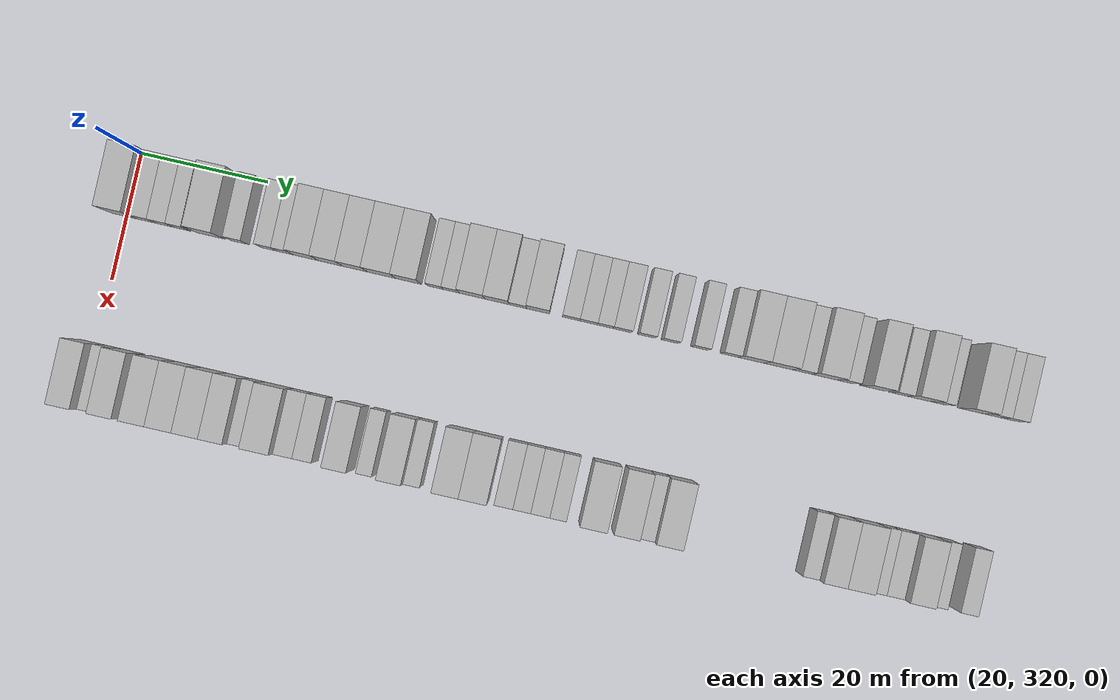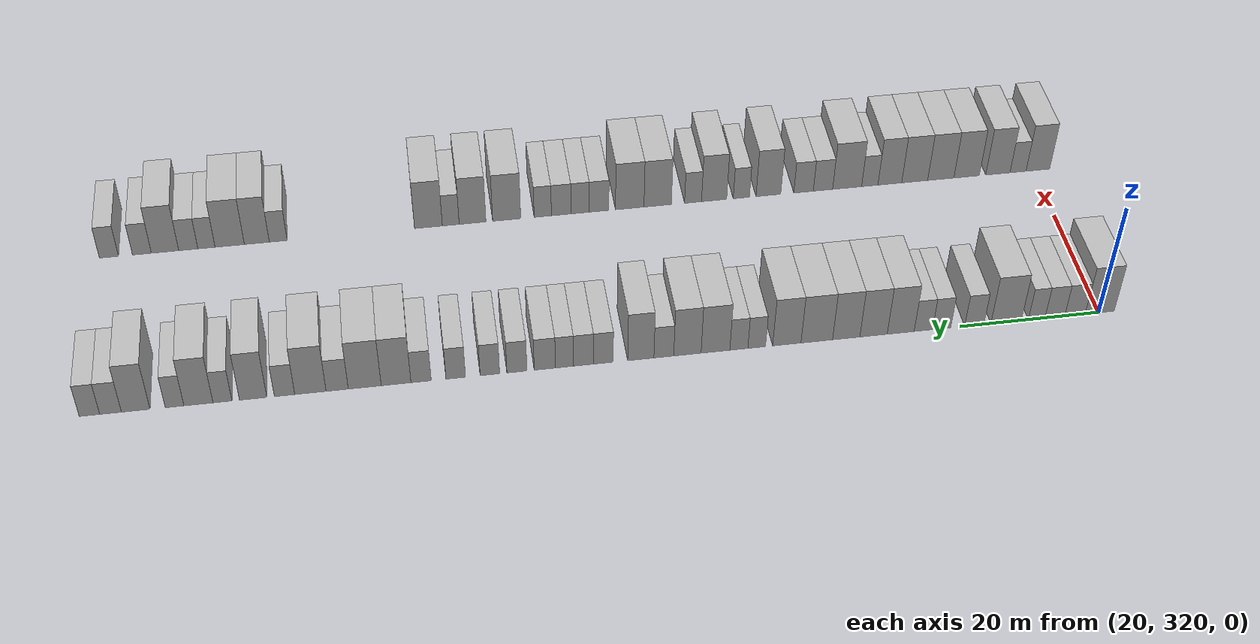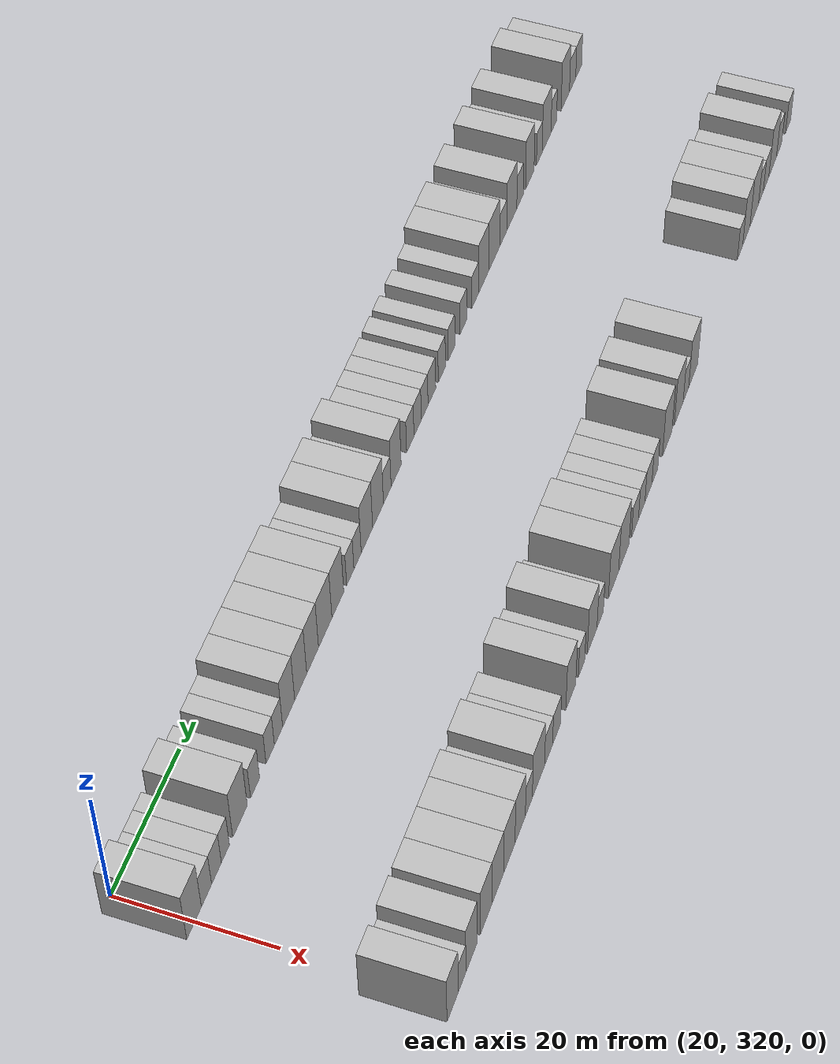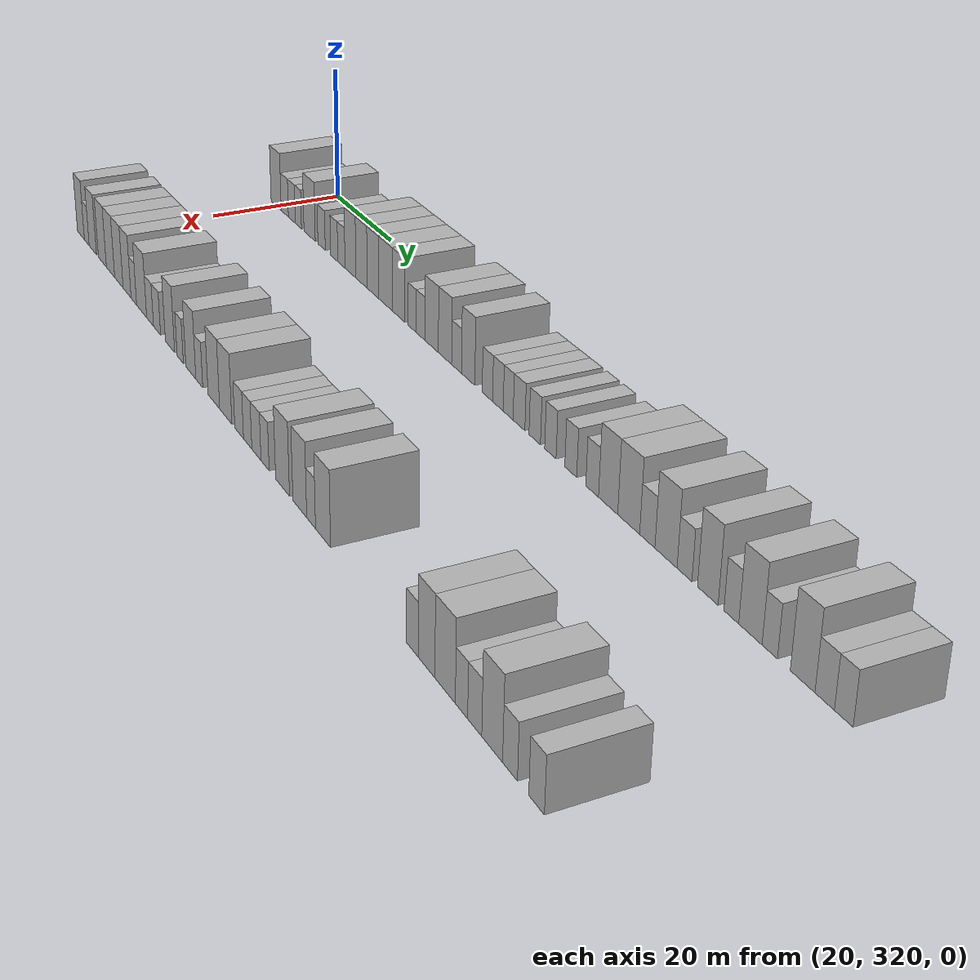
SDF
<sdf version="1.6">
 <world name="default">
  <model name="building_197">
   <static>1</static>
   <pose>25.0000 319.8557 0 0.000000 0.000000 0.000000</pose>
   <link name="link">
    <pose>0 0 4.50 0 0 0</pose>
    <collision name="collision"><geometry><box><size>10.0000 4.2234 9.0000</size></box></geometry></collision>
    <visual name="visual">
     <cast_shadows>0</cast_shadows>
     <geometry><box><size>10.0000 4.2234 9.0000</size></box></geometry>
     <material>
      <script>
       <uri>model://HANNAS_wall/materials/scripts</uri>
       <uri>model://HANNAS_wall/materials/textures</uri>
       <name>vrc/HANNAS_wall</name>
      </script>
     </material>
    </visual>
   </link>
  </model>
  <model name="building_198">
   <static>1</static>
   <pose>25.0000 323.4519 0 0.000000 0.000000 0.000000</pose>
   <link name="link">
    <pose>0 0 3.00 0 0 0</pose>
    <collision name="collision"><geometry><box><size>10.0000 2.9689 6.0000</size></box></geometry></collision>
    <visual name="visual">
     <cast_shadows>0</cast_shadows>
     <geometry><box><size>10.0000 2.9689 6.0000</size></box></geometry>
     <material>
      <script>
       <uri>model://HANNAS_wall/materials/scripts</uri>
       <uri>model://HANNAS_wall/materials/textures</uri>
       <name>vrc/HANNAS_wall</name>
      </script>
     </material>
    </visual>
   </link>
  </model>
  <model name="building_199">
   <static>1</static>
   <pose>25.0000 326.3634 0 0.000000 0.000000 0.000000</pose>
   <link name="link">
    <pose>0 0 3.00 0 0 0</pose>
    <collision name="collision"><geometry><box><size>10.0000 2.8542 6.0000</size></box></geometry></collision>
    <visual name="visual">
     <cast_shadows>0</cast_shadows>
     <geometry><box><size>10.0000 2.8542 6.0000</size></box></geometry>
     <material>
      <script>
       <uri>model://HANNAS_wall/materials/scripts</uri>
       <uri>model://HANNAS_wall/materials/textures</uri>
       <name>vrc/HANNAS_wall</name>
      </script>
     </material>
    </visual>
   </link>
  </model>
  <model name="building_200">
   <static>1</static>
   <pose>25.0000 328.9906 0 0.000000 0.000000 0.000000</pose>
   <link name="link">
    <pose>0 0 3.00 0 0 0</pose>
    <collision name="collision"><geometry><box><size>10.0000 2.4001 6.0000</size></box></geometry></collision>
    <visual name="visual">
     <cast_shadows>0</cast_shadows>
     <geometry><box><size>10.0000 2.4001 6.0000</size></box></geometry>
     <material>
      <script>
       <uri>model://HANNAS_wall/materials/scripts</uri>
       <uri>model://HANNAS_wall/materials/textures</uri>
       <name>vrc/HANNAS_wall</name>
      </script>
     </material>
    </visual>
   </link>
  </model>
  <model name="building_201">
   <static>1</static>
   <pose>25.0000 333.3855 0 0.000000 0.000000 0.000000</pose>
   <link name="link">
    <pose>0 0 4.50 0 0 0</pose>
    <collision name="collision"><geometry><box><size>10.0000 4.3897 9.0000</size></box></geometry></collision>
    <visual name="visual">
     <cast_shadows>0</cast_shadows>
     <geometry><box><size>10.0000 4.3897 9.0000</size></box></geometry>
     <material>
      <script>
       <uri>model://HANNAS_wall/materials/scripts</uri>
       <uri>model://HANNAS_wall/materials/textures</uri>
       <name>vrc/HANNAS_wall</name>
      </script>
     </material>
    </visual>
   </link>
  </model>
  <model name="building_202">
   <static>1</static>
   <pose>25.0000 337.9633 0 0.000000 0.000000 0.000000</pose>
   <link name="link">
    <pose>0 0 3.00 0 0 0</pose>
    <collision name="collision"><geometry><box><size>10.0000 2.7659 6.0000</size></box></geometry></collision>
    <visual name="visual">
     <cast_shadows>0</cast_shadows>
     <geometry><box><size>10.0000 2.7659 6.0000</size></box></geometry>
     <material>
      <script>
       <uri>model://HANNAS_wall/materials/scripts</uri>
       <uri>model://HANNAS_wall/materials/textures</uri>
       <name>vrc/HANNAS_wall</name>
      </script>
     </material>
    </visual>
   </link>
  </model>
  <model name="building_203">
   <static>1</static>
   <pose>25.0000 342.6513 0 0.000000 0.000000 0.000000</pose>
   <link name="link">
    <pose>0 0 3.00 0 0 0</pose>
    <collision name="collision"><geometry><box><size>10.0000 2.6101 6.0000</size></box></geometry></collision>
    <visual name="visual">
     <cast_shadows>0</cast_shadows>
     <geometry><box><size>10.0000 2.6101 6.0000</size></box></geometry>
     <material>
      <script>
       <uri>model://HANNAS_wall/materials/scripts</uri>
       <uri>model://HANNAS_wall/materials/textures</uri>
       <name>vrc/HANNAS_wall</name>
      </script>
     </material>
    </visual>
   </link>
  </model>
  <model name="building_204">
   <static>1</static>
   <pose>25.0000 345.2604 0 0.000000 0.000000 0.000000</pose>
   <link name="link">
    <pose>0 0 3.00 0 0 0</pose>
    <collision name="collision"><geometry><box><size>10.0000 2.6081 6.0000</size></box></geometry></collision>
    <visual name="visual">
     <cast_shadows>0</cast_shadows>
     <geometry><box><size>10.0000 2.6081 6.0000</size></box></geometry>
     <material>
      <script>
       <uri>model://HANNAS_wall/materials/scripts</uri>
       <uri>model://HANNAS_wall/materials/textures</uri>
       <name>vrc/HANNAS_wall</name>
      </script>
     </material>
    </visual>
   </link>
  </model>
  <model name="building_205">
   <static>1</static>
   <pose>25.0000 348.4833 0 0.000000 0.000000 0.000000</pose>
   <link name="link">
    <pose>0 0 4.50 0 0 0</pose>
    <collision name="collision"><geometry><box><size>10.0000 3.8378 9.0000</size></box></geometry></collision>
    <visual name="visual">
     <cast_shadows>0</cast_shadows>
     <geometry><box><size>10.0000 3.8378 9.0000</size></box></geometry>
     <material>
      <script>
       <uri>model://HANNAS_wall/materials/scripts</uri>
       <uri>model://HANNAS_wall/materials/textures</uri>
       <name>vrc/HANNAS_wall</name>
      </script>
     </material>
    </visual>
   </link>
  </model>
  <model name="building_206">
   <static>1</static>
   <pose>25.0000 352.3421 0 0.000000 0.000000 0.000000</pose>
   <link name="link">
    <pose>0 0 4.50 0 0 0</pose>
    <collision name="collision"><geometry><box><size>10.0000 3.8798 9.0000</size></box></geometry></collision>
    <visual name="visual">
     <cast_shadows>0</cast_shadows>
     <geometry><box><size>10.0000 3.8798 9.0000</size></box></geometry>
     <material>
      <script>
       <uri>model://HANNAS_wall/materials/scripts</uri>
       <uri>model://HANNAS_wall/materials/textures</uri>
       <name>vrc/HANNAS_wall</name>
      </script>
     </material>
    </visual>
   </link>
  </model>
  <model name="building_207">
   <static>1</static>
   <pose>25.0000 356.2117 0 0.000000 0.000000 0.000000</pose>
   <link name="link">
    <pose>0 0 4.50 0 0 0</pose>
    <collision name="collision"><geometry><box><size>10.0000 3.8594 9.0000</size></box></geometry></collision>
    <visual name="visual">
     <cast_shadows>0</cast_shadows>
     <geometry><box><size>10.0000 3.8594 9.0000</size></box></geometry>
     <material>
      <script>
       <uri>model://HANNAS_wall/materials/scripts</uri>
       <uri>model://HANNAS_wall/materials/textures</uri>
       <name>vrc/HANNAS_wall</name>
      </script>
     </material>
    </visual>
   </link>
  </model>
  <model name="building_208">
   <static>1</static>
   <pose>25.0000 360.3680 0 0.000000 0.000000 0.000000</pose>
   <link name="link">
    <pose>0 0 4.50 0 0 0</pose>
    <collision name="collision"><geometry><box><size>10.0000 4.4531 9.0000</size></box></geometry></collision>
    <visual name="visual">
     <cast_shadows>0</cast_shadows>
     <geometry><box><size>10.0000 4.4531 9.0000</size></box></geometry>
     <material>
      <script>
       <uri>model://HANNAS_wall/materials/scripts</uri>
       <uri>model://HANNAS_wall/materials/textures</uri>
       <name>vrc/HANNAS_wall</name>
      </script>
     </material>
    </visual>
   </link>
  </model>
  <model name="building_209">
   <static>1</static>
   <pose>25.0000 364.5858 0 0.000000 0.000000 0.000000</pose>
   <link name="link">
    <pose>0 0 4.50 0 0 0</pose>
    <collision name="collision"><geometry><box><size>10.0000 3.9825 9.0000</size></box></geometry></collision>
    <visual name="visual">
     <cast_shadows>0</cast_shadows>
     <geometry><box><size>10.0000 3.9825 9.0000</size></box></geometry>
     <material>
      <script>
       <uri>model://HANNAS_wall/materials/scripts</uri>
       <uri>model://HANNAS_wall/materials/textures</uri>
       <name>vrc/HANNAS_wall</name>
      </script>
     </material>
    </visual>
   </link>
  </model>
  <model name="building_210">
   <static>1</static>
   <pose>25.0000 368.8135 0 0.000000 0.000000 0.000000</pose>
   <link name="link">
    <pose>0 0 3.00 0 0 0</pose>
    <collision name="collision"><geometry><box><size>10.0000 2.4729 6.0000</size></box></geometry></collision>
    <visual name="visual">
     <cast_shadows>0</cast_shadows>
     <geometry><box><size>10.0000 2.4729 6.0000</size></box></geometry>
     <material>
      <script>
       <uri>model://HANNAS_wall/materials/scripts</uri>
       <uri>model://HANNAS_wall/materials/textures</uri>
       <name>vrc/HANNAS_wall</name>
      </script>
     </material>
    </visual>
   </link>
  </model>
  <model name="building_211">
   <static>1</static>
   <pose>25.0000 371.3110 0 0.000000 0.000000 0.000000</pose>
   <link name="link">
    <pose>0 0 3.00 0 0 0</pose>
    <collision name="collision"><geometry><box><size>10.0000 2.5222 6.0000</size></box></geometry></collision>
    <visual name="visual">
     <cast_shadows>0</cast_shadows>
     <geometry><box><size>10.0000 2.5222 6.0000</size></box></geometry>
     <material>
      <script>
       <uri>model://HANNAS_wall/materials/scripts</uri>
       <uri>model://HANNAS_wall/materials/textures</uri>
       <name>vrc/HANNAS_wall</name>
      </script>
     </material>
    </visual>
   </link>
  </model>
  <model name="building_212">
   <static>1</static>
   <pose>25.0000 374.5769 0 0.000000 0.000000 0.000000</pose>
   <link name="link">
    <pose>0 0 4.50 0 0 0</pose>
    <collision name="collision"><geometry><box><size>10.0000 4.0097 9.0000</size></box></geometry></collision>
    <visual name="visual">
     <cast_shadows>0</cast_shadows>
     <geometry><box><size>10.0000 4.0097 9.0000</size></box></geometry>
     <material>
      <script>
       <uri>model://HANNAS_wall/materials/scripts</uri>
       <uri>model://HANNAS_wall/materials/textures</uri>
       <name>vrc/HANNAS_wall</name>
      </script>
     </material>
    </visual>
   </link>
  </model>
  <model name="building_213">
   <static>1</static>
   <pose>25.0000 378.4858 0 0.000000 0.000000 0.000000</pose>
   <link name="link">
    <pose>0 0 4.50 0 0 0</pose>
    <collision name="collision"><geometry><box><size>10.0000 3.8081 9.0000</size></box></geometry></collision>
    <visual name="visual">
     <cast_shadows>0</cast_shadows>
     <geometry><box><size>10.0000 3.8081 9.0000</size></box></geometry>
     <material>
      <script>
       <uri>model://HANNAS_wall/materials/scripts</uri>
       <uri>model://HANNAS_wall/materials/textures</uri>
       <name>vrc/HANNAS_wall</name>
      </script>
     </material>
    </visual>
   </link>
  </model>
  <model name="building_214">
   <static>1</static>
   <pose>25.0000 381.7617 0 0.000000 0.000000 0.000000</pose>
   <link name="link">
    <pose>0 0 3.00 0 0 0</pose>
    <collision name="collision"><geometry><box><size>10.0000 2.7436 6.0000</size></box></geometry></collision>
    <visual name="visual">
     <cast_shadows>0</cast_shadows>
     <geometry><box><size>10.0000 2.7436 6.0000</size></box></geometry>
     <material>
      <script>
       <uri>model://HANNAS_wall/materials/scripts</uri>
       <uri>model://HANNAS_wall/materials/textures</uri>
       <name>vrc/HANNAS_wall</name>
      </script>
     </material>
    </visual>
   </link>
  </model>
  <model name="building_215">
   <static>1</static>
   <pose>25.0000 384.9480 0 0.000000 0.000000 0.000000</pose>
   <link name="link">
    <pose>0 0 4.50 0 0 0</pose>
    <collision name="collision"><geometry><box><size>10.0000 3.6289 9.0000</size></box></geometry></collision>
    <visual name="visual">
     <cast_shadows>0</cast_shadows>
     <geometry><box><size>10.0000 3.6289 9.0000</size></box></geometry>
     <material>
      <script>
       <uri>model://HANNAS_wall/materials/scripts</uri>
       <uri>model://HANNAS_wall/materials/textures</uri>
       <name>vrc/HANNAS_wall</name>
      </script>
     </material>
    </visual>
   </link>
  </model>
  <model name="building_216">
   <static>1</static>
   <pose>25.0000 390.1181 0 0.000000 0.000000 0.000000</pose>
   <link name="link">
    <pose>0 0 3.00 0 0 0</pose>
    <collision name="collision"><geometry><box><size>10.0000 2.7114 6.0000</size></box></geometry></collision>
    <visual name="visual">
     <cast_shadows>0</cast_shadows>
     <geometry><box><size>10.0000 2.7114 6.0000</size></box></geometry>
     <material>
      <script>
       <uri>model://HANNAS_wall/materials/scripts</uri>
       <uri>model://HANNAS_wall/materials/textures</uri>
       <name>vrc/HANNAS_wall</name>
      </script>
     </material>
    </visual>
   </link>
  </model>
  <model name="building_217">
   <static>1</static>
   <pose>25.0000 392.8410 0 0.000000 0.000000 0.000000</pose>
   <link name="link">
    <pose>0 0 3.00 0 0 0</pose>
    <collision name="collision"><geometry><box><size>10.0000 2.7344 6.0000</size></box></geometry></collision>
    <visual name="visual">
     <cast_shadows>0</cast_shadows>
     <geometry><box><size>10.0000 2.7344 6.0000</size></box></geometry>
     <material>
      <script>
       <uri>model://HANNAS_wall/materials/scripts</uri>
       <uri>model://HANNAS_wall/materials/textures</uri>
       <name>vrc/HANNAS_wall</name>
      </script>
     </material>
    </visual>
   </link>
  </model>
  <model name="building_218">
   <static>1</static>
   <pose>25.0000 395.4579 0 0.000000 0.000000 0.000000</pose>
   <link name="link">
    <pose>0 0 3.00 0 0 0</pose>
    <collision name="collision"><geometry><box><size>10.0000 2.4995 6.0000</size></box></geometry></collision>
    <visual name="visual">
     <cast_shadows>0</cast_shadows>
     <geometry><box><size>10.0000 2.4995 6.0000</size></box></geometry>
     <material>
      <script>
       <uri>model://HANNAS_wall/materials/scripts</uri>
       <uri>model://HANNAS_wall/materials/textures</uri>
       <name>vrc/HANNAS_wall</name>
      </script>
     </material>
    </visual>
   </link>
  </model>
  <model name="building_219">
   <static>1</static>
   <pose>25.0000 398.1596 0 0.000000 0.000000 0.000000</pose>
   <link name="link">
    <pose>0 0 3.00 0 0 0</pose>
    <collision name="collision"><geometry><box><size>10.0000 2.9039 6.0000</size></box></geometry></collision>
    <visual name="visual">
     <cast_shadows>0</cast_shadows>
     <geometry><box><size>10.0000 2.9039 6.0000</size></box></geometry>
     <material>
      <script>
       <uri>model://HANNAS_wall/materials/scripts</uri>
       <uri>model://HANNAS_wall/materials/textures</uri>
       <name>vrc/HANNAS_wall</name>
      </script>
     </material>
    </visual>
   </link>
  </model>
  <model name="building_220">
   <static>1</static>
   <pose>25.0000 401.9775 0 0.000000 0.000000 0.000000</pose>
   <link name="link">
    <pose>0 0 3.00 0 0 0</pose>
    <collision name="collision"><geometry><box><size>10.0000 2.7319 6.0000</size></box></geometry></collision>
    <visual name="visual">
     <cast_shadows>0</cast_shadows>
     <geometry><box><size>10.0000 2.7319 6.0000</size></box></geometry>
     <material>
      <script>
       <uri>model://HANNAS_wall/materials/scripts</uri>
       <uri>model://HANNAS_wall/materials/textures</uri>
       <name>vrc/HANNAS_wall</name>
      </script>
     </material>
    </visual>
   </link>
  </model>
  <model name="building_221">
   <static>1</static>
   <pose>25.0000 405.6670 0 0.000000 0.000000 0.000000</pose>
   <link name="link">
    <pose>0 0 3.00 0 0 0</pose>
    <collision name="collision"><geometry><box><size>10.0000 2.6470 6.0000</size></box></geometry></collision>
    <visual name="visual">
     <cast_shadows>0</cast_shadows>
     <geometry><box><size>10.0000 2.6470 6.0000</size></box></geometry>
     <material>
      <script>
       <uri>model://HANNAS_wall/materials/scripts</uri>
       <uri>model://HANNAS_wall/materials/textures</uri>
       <name>vrc/HANNAS_wall</name>
      </script>
     </material>
    </visual>
   </link>
  </model>
  <model name="building_222">
   <static>1</static>
   <pose>25.0000 410.3120 0 0.000000 0.000000 0.000000</pose>
   <link name="link">
    <pose>0 0 3.00 0 0 0</pose>
    <collision name="collision"><geometry><box><size>10.0000 2.6430 6.0000</size></box></geometry></collision>
    <visual name="visual">
     <cast_shadows>0</cast_shadows>
     <geometry><box><size>10.0000 2.6430 6.0000</size></box></geometry>
     <material>
      <script>
       <uri>model://HANNAS_wall/materials/scripts</uri>
       <uri>model://HANNAS_wall/materials/textures</uri>
       <name>vrc/HANNAS_wall</name>
      </script>
     </material>
    </visual>
   </link>
  </model>
  <model name="building_223">
   <static>1</static>
   <pose>25.0000 415.0012 0 0.000000 0.000000 0.000000</pose>
   <link name="link">
    <pose>0 0 3.00 0 0 0</pose>
    <collision name="collision"><geometry><box><size>10.0000 2.7354 6.0000</size></box></geometry></collision>
    <visual name="visual">
     <cast_shadows>0</cast_shadows>
     <geometry><box><size>10.0000 2.7354 6.0000</size></box></geometry>
     <material>
      <script>
       <uri>model://HANNAS_wall/materials/scripts</uri>
       <uri>model://HANNAS_wall/materials/textures</uri>
       <name>vrc/HANNAS_wall</name>
      </script>
     </material>
    </visual>
   </link>
  </model>
  <model name="building_224">
   <static>1</static>
   <pose>25.0000 418.3740 0 0.000000 0.000000 0.000000</pose>
   <link name="link">
    <pose>0 0 4.50 0 0 0</pose>
    <collision name="collision"><geometry><box><size>10.0000 4.0102 9.0000</size></box></geometry></collision>
    <visual name="visual">
     <cast_shadows>0</cast_shadows>
     <geometry><box><size>10.0000 4.0102 9.0000</size></box></geometry>
     <material>
      <script>
       <uri>model://HANNAS_wall/materials/scripts</uri>
       <uri>model://HANNAS_wall/materials/textures</uri>
       <name>vrc/HANNAS_wall</name>
      </script>
     </material>
    </visual>
   </link>
  </model>
  <model name="building_225">
   <static>1</static>
   <pose>25.0000 422.5946 0 0.000000 0.000000 0.000000</pose>
   <link name="link">
    <pose>0 0 4.50 0 0 0</pose>
    <collision name="collision"><geometry><box><size>10.0000 4.4310 9.0000</size></box></geometry></collision>
    <visual name="visual">
     <cast_shadows>0</cast_shadows>
     <geometry><box><size>10.0000 4.4310 9.0000</size></box></geometry>
     <material>
      <script>
       <uri>model://HANNAS_wall/materials/scripts</uri>
       <uri>model://HANNAS_wall/materials/textures</uri>
       <name>vrc/HANNAS_wall</name>
      </script>
     </material>
    </visual>
   </link>
  </model>
  <model name="building_226">
   <static>1</static>
   <pose>25.0000 426.2980 0 0.000000 0.000000 0.000000</pose>
   <link name="link">
    <pose>0 0 3.00 0 0 0</pose>
    <collision name="collision"><geometry><box><size>10.0000 2.9757 6.0000</size></box></geometry></collision>
    <visual name="visual">
     <cast_shadows>0</cast_shadows>
     <geometry><box><size>10.0000 2.9757 6.0000</size></box></geometry>
     <material>
      <script>
       <uri>model://HANNAS_wall/materials/scripts</uri>
       <uri>model://HANNAS_wall/materials/textures</uri>
       <name>vrc/HANNAS_wall</name>
      </script>
     </material>
    </visual>
   </link>
  </model>
  <model name="building_227">
   <static>1</static>
   <pose>25.0000 429.8793 0 0.000000 0.000000 0.000000</pose>
   <link name="link">
    <pose>0 0 4.50 0 0 0</pose>
    <collision name="collision"><geometry><box><size>10.0000 4.1868 9.0000</size></box></geometry></collision>
    <visual name="visual">
     <cast_shadows>0</cast_shadows>
     <geometry><box><size>10.0000 4.1868 9.0000</size></box></geometry>
     <material>
      <script>
       <uri>model://HANNAS_wall/materials/scripts</uri>
       <uri>model://HANNAS_wall/materials/textures</uri>
       <name>vrc/HANNAS_wall</name>
      </script>
     </material>
    </visual>
   </link>
  </model>
  <model name="building_228">
   <static>1</static>
   <pose>25.0000 433.3317 0 0.000000 0.000000 0.000000</pose>
   <link name="link">
    <pose>0 0 3.00 0 0 0</pose>
    <collision name="collision"><geometry><box><size>10.0000 2.7180 6.0000</size></box></geometry></collision>
    <visual name="visual">
     <cast_shadows>0</cast_shadows>
     <geometry><box><size>10.0000 2.7180 6.0000</size></box></geometry>
     <material>
      <script>
       <uri>model://HANNAS_wall/materials/scripts</uri>
       <uri>model://HANNAS_wall/materials/textures</uri>
       <name>vrc/HANNAS_wall</name>
      </script>
     </material>
    </visual>
   </link>
  </model>
  <model name="building_229">
   <static>1</static>
   <pose>25.0000 437.5101 0 0.000000 0.000000 0.000000</pose>
   <link name="link">
    <pose>0 0 4.50 0 0 0</pose>
    <collision name="collision"><geometry><box><size>10.0000 3.6388 9.0000</size></box></geometry></collision>
    <visual name="visual">
     <cast_shadows>0</cast_shadows>
     <geometry><box><size>10.0000 3.6388 9.0000</size></box></geometry>
     <material>
      <script>
       <uri>model://HANNAS_wall/materials/scripts</uri>
       <uri>model://HANNAS_wall/materials/textures</uri>
       <name>vrc/HANNAS_wall</name>
      </script>
     </material>
    </visual>
   </link>
  </model>
  <model name="building_230">
   <static>1</static>
   <pose>25.0000 441.5833 0 0.000000 0.000000 0.000000</pose>
   <link name="link">
    <pose>0 0 3.00 0 0 0</pose>
    <collision name="collision"><geometry><box><size>10.0000 2.5076 6.0000</size></box></geometry></collision>
    <visual name="visual">
     <cast_shadows>0</cast_shadows>
     <geometry><box><size>10.0000 2.5076 6.0000</size></box></geometry>
     <material>
      <script>
       <uri>model://HANNAS_wall/materials/scripts</uri>
       <uri>model://HANNAS_wall/materials/textures</uri>
       <name>vrc/HANNAS_wall</name>
      </script>
     </material>
    </visual>
   </link>
  </model>
  <model name="building_231">
   <static>1</static>
   <pose>25.0000 444.7600 0 0.000000 0.000000 0.000000</pose>
   <link name="link">
    <pose>0 0 4.50 0 0 0</pose>
    <collision name="collision"><geometry><box><size>10.0000 3.8456 9.0000</size></box></geometry></collision>
    <visual name="visual">
     <cast_shadows>0</cast_shadows>
     <geometry><box><size>10.0000 3.8456 9.0000</size></box></geometry>
     <material>
      <script>
       <uri>model://HANNAS_wall/materials/scripts</uri>
       <uri>model://HANNAS_wall/materials/textures</uri>
       <name>vrc/HANNAS_wall</name>
      </script>
     </material>
    </visual>
   </link>
  </model>
  <model name="building_232">
   <static>1</static>
   <pose>25.0000 447.9130 0 0.000000 0.000000 0.000000</pose>
   <link name="link">
    <pose>0 0 3.00 0 0 0</pose>
    <collision name="collision"><geometry><box><size>10.0000 2.4603 6.0000</size></box></geometry></collision>
    <visual name="visual">
     <cast_shadows>0</cast_shadows>
     <geometry><box><size>10.0000 2.4603 6.0000</size></box></geometry>
     <material>
      <script>
       <uri>model://HANNAS_wall/materials/scripts</uri>
       <uri>model://HANNAS_wall/materials/textures</uri>
       <name>vrc/HANNAS_wall</name>
      </script>
     </material>
    </visual>
   </link>
  </model>
  <model name="building_233">
   <static>1</static>
   <pose>25.0000 453.0198 0 0.000000 0.000000 0.000000</pose>
   <link name="link">
    <pose>0 0 4.50 0 0 0</pose>
    <collision name="collision"><geometry><box><size>10.0000 3.7533 9.0000</size></box></geometry></collision>
    <visual name="visual">
     <cast_shadows>0</cast_shadows>
     <geometry><box><size>10.0000 3.7533 9.0000</size></box></geometry>
     <material>
      <script>
       <uri>model://HANNAS_wall/materials/scripts</uri>
       <uri>model://HANNAS_wall/materials/textures</uri>
       <name>vrc/HANNAS_wall</name>
      </script>
     </material>
    </visual>
   </link>
  </model>
  <model name="building_234">
   <static>1</static>
   <pose>25.0000 456.3188 0 0.000000 0.000000 0.000000</pose>
   <link name="link">
    <pose>0 0 3.00 0 0 0</pose>
    <collision name="collision"><geometry><box><size>10.0000 2.8449 6.0000</size></box></geometry></collision>
    <visual name="visual">
     <cast_shadows>0</cast_shadows>
     <geometry><box><size>10.0000 2.8449 6.0000</size></box></geometry>
     <material>
      <script>
       <uri>model://HANNAS_wall/materials/scripts</uri>
       <uri>model://HANNAS_wall/materials/textures</uri>
       <name>vrc/HANNAS_wall</name>
      </script>
     </material>
    </visual>
   </link>
  </model>
  <model name="building_235">
   <static>1</static>
   <pose>25.0000 459.0785 0 0.000000 0.000000 0.000000</pose>
   <link name="link">
    <pose>0 0 3.00 0 0 0</pose>
    <collision name="collision"><geometry><box><size>10.0000 2.6744 6.0000</size></box></geometry></collision>
    <visual name="visual">
     <cast_shadows>0</cast_shadows>
     <geometry><box><size>10.0000 2.6744 6.0000</size></box></geometry>
     <material>
      <script>
       <uri>model://HANNAS_wall/materials/scripts</uri>
       <uri>model://HANNAS_wall/materials/textures</uri>
       <name>vrc/HANNAS_wall</name>
      </script>
     </material>
    </visual>
   </link>
  </model>
  <model name="building_429">
   <static>1</static>
   <pose>55.0000 319.3442 0 0.000000 0.000000 0.000000</pose>
   <link name="link">
    <pose>0 0 4.50 0 0 0</pose>
    <collision name="collision"><geometry><box><size>10.0000 3.6996 9.0000</size></box></geometry></collision>
    <visual name="visual">
     <cast_shadows>0</cast_shadows>
     <geometry><box><size>10.0000 3.6996 9.0000</size></box></geometry>
     <material>
      <script>
       <uri>model://HANNAS_wall/materials/scripts</uri>
       <uri>model://HANNAS_wall/materials/textures</uri>
       <name>vrc/HANNAS_wall</name>
      </script>
     </material>
    </visual>
   </link>
  </model>
  <model name="building_430">
   <static>1</static>
   <pose>55.0000 322.4497 0 0.000000 0.000000 0.000000</pose>
   <link name="link">
    <pose>0 0 3.00 0 0 0</pose>
    <collision name="collision"><geometry><box><size>10.0000 2.5115 6.0000</size></box></geometry></collision>
    <visual name="visual">
     <cast_shadows>0</cast_shadows>
     <geometry><box><size>10.0000 2.5115 6.0000</size></box></geometry>
     <material>
      <script>
       <uri>model://HANNAS_wall/materials/scripts</uri>
       <uri>model://HANNAS_wall/materials/textures</uri>
       <name>vrc/HANNAS_wall</name>
      </script>
     </material>
    </visual>
   </link>
  </model>
  <model name="building_431">
   <static>1</static>
   <pose>55.0000 325.5957 0 0.000000 0.000000 0.000000</pose>
   <link name="link">
    <pose>0 0 4.50 0 0 0</pose>
    <collision name="collision"><geometry><box><size>10.0000 3.7805 9.0000</size></box></geometry></collision>
    <visual name="visual">
     <cast_shadows>0</cast_shadows>
     <geometry><box><size>10.0000 3.7805 9.0000</size></box></geometry>
     <material>
      <script>
       <uri>model://HANNAS_wall/materials/scripts</uri>
       <uri>model://HANNAS_wall/materials/textures</uri>
       <name>vrc/HANNAS_wall</name>
      </script>
     </material>
    </visual>
   </link>
  </model>
  <model name="building_432">
   <static>1</static>
   <pose>55.0000 330.4699 0 0.000000 0.000000 0.000000</pose>
   <link name="link">
    <pose>0 0 4.50 0 0 0</pose>
    <collision name="collision"><geometry><box><size>10.0000 3.9678 9.0000</size></box></geometry></collision>
    <visual name="visual">
     <cast_shadows>0</cast_shadows>
     <geometry><box><size>10.0000 3.9678 9.0000</size></box></geometry>
     <material>
      <script>
       <uri>model://HANNAS_wall/materials/scripts</uri>
       <uri>model://HANNAS_wall/materials/textures</uri>
       <name>vrc/HANNAS_wall</name>
      </script>
     </material>
    </visual>
   </link>
  </model>
  <model name="building_433">
   <static>1</static>
   <pose>55.0000 334.4883 0 0.000000 0.000000 0.000000</pose>
   <link name="link">
    <pose>0 0 4.50 0 0 0</pose>
    <collision name="collision"><geometry><box><size>10.0000 4.0689 9.0000</size></box></geometry></collision>
    <visual name="visual">
     <cast_shadows>0</cast_shadows>
     <geometry><box><size>10.0000 4.0689 9.0000</size></box></geometry>
     <material>
      <script>
       <uri>model://HANNAS_wall/materials/scripts</uri>
       <uri>model://HANNAS_wall/materials/textures</uri>
       <name>vrc/HANNAS_wall</name>
      </script>
     </material>
    </visual>
   </link>
  </model>
  <model name="building_434">
   <static>1</static>
   <pose>55.0000 338.5330 0 0.000000 0.000000 0.000000</pose>
   <link name="link">
    <pose>0 0 4.50 0 0 0</pose>
    <collision name="collision"><geometry><box><size>10.0000 4.0204 9.0000</size></box></geometry></collision>
    <visual name="visual">
     <cast_shadows>0</cast_shadows>
     <geometry><box><size>10.0000 4.0204 9.0000</size></box></geometry>
     <material>
      <script>
       <uri>model://HANNAS_wall/materials/scripts</uri>
       <uri>model://HANNAS_wall/materials/textures</uri>
       <name>vrc/HANNAS_wall</name>
      </script>
     </material>
    </visual>
   </link>
  </model>
  <model name="building_435">
   <static>1</static>
   <pose>55.0000 342.3764 0 0.000000 0.000000 0.000000</pose>
   <link name="link">
    <pose>0 0 4.50 0 0 0</pose>
    <collision name="collision"><geometry><box><size>10.0000 3.6665 9.0000</size></box></geometry></collision>
    <visual name="visual">
     <cast_shadows>0</cast_shadows>
     <geometry><box><size>10.0000 3.6665 9.0000</size></box></geometry>
     <material>
      <script>
       <uri>model://HANNAS_wall/materials/scripts</uri>
       <uri>model://HANNAS_wall/materials/textures</uri>
       <name>vrc/HANNAS_wall</name>
      </script>
     </material>
    </visual>
   </link>
  </model>
  <model name="building_436">
   <static>1</static>
   <pose>55.0000 345.4681 0 0.000000 0.000000 0.000000</pose>
   <link name="link">
    <pose>0 0 3.00 0 0 0</pose>
    <collision name="collision"><geometry><box><size>10.0000 2.5168 6.0000</size></box></geometry></collision>
    <visual name="visual">
     <cast_shadows>0</cast_shadows>
     <geometry><box><size>10.0000 2.5168 6.0000</size></box></geometry>
     <material>
      <script>
       <uri>model://HANNAS_wall/materials/scripts</uri>
       <uri>model://HANNAS_wall/materials/textures</uri>
       <name>vrc/HANNAS_wall</name>
      </script>
     </material>
    </visual>
   </link>
  </model>
  <model name="building_437">
   <static>1</static>
   <pose>55.0000 348.9542 0 0.000000 0.000000 0.000000</pose>
   <link name="link">
    <pose>0 0 4.50 0 0 0</pose>
    <collision name="collision"><geometry><box><size>10.0000 4.4554 9.0000</size></box></geometry></collision>
    <visual name="visual">
     <cast_shadows>0</cast_shadows>
     <geometry><box><size>10.0000 4.4554 9.0000</size></box></geometry>
     <material>
      <script>
       <uri>model://HANNAS_wall/materials/scripts</uri>
       <uri>model://HANNAS_wall/materials/textures</uri>
       <name>vrc/HANNAS_wall</name>
      </script>
     </material>
    </visual>
   </link>
  </model>
  <model name="building_438">
   <static>1</static>
   <pose>55.0000 352.6617 0 0.000000 0.000000 0.000000</pose>
   <link name="link">
    <pose>0 0 3.00 0 0 0</pose>
    <collision name="collision"><geometry><box><size>10.0000 2.9597 6.0000</size></box></geometry></collision>
    <visual name="visual">
     <cast_shadows>0</cast_shadows>
     <geometry><box><size>10.0000 2.9597 6.0000</size></box></geometry>
     <material>
      <script>
       <uri>model://HANNAS_wall/materials/scripts</uri>
       <uri>model://HANNAS_wall/materials/textures</uri>
       <name>vrc/HANNAS_wall</name>
      </script>
     </material>
    </visual>
   </link>
  </model>
  <model name="building_439">
   <static>1</static>
   <pose>55.0000 355.6307 0 0.000000 0.000000 0.000000</pose>
   <link name="link">
    <pose>0 0 3.00 0 0 0</pose>
    <collision name="collision"><geometry><box><size>10.0000 2.9783 6.0000</size></box></geometry></collision>
    <visual name="visual">
     <cast_shadows>0</cast_shadows>
     <geometry><box><size>10.0000 2.9783 6.0000</size></box></geometry>
     <material>
      <script>
       <uri>model://HANNAS_wall/materials/scripts</uri>
       <uri>model://HANNAS_wall/materials/textures</uri>
       <name>vrc/HANNAS_wall</name>
      </script>
     </material>
    </visual>
   </link>
  </model>
  <model name="building_440">
   <static>1</static>
   <pose>55.0000 361.0035 0 0.000000 0.000000 0.000000</pose>
   <link name="link">
    <pose>0 0 4.50 0 0 0</pose>
    <collision name="collision"><geometry><box><size>10.0000 3.7672 9.0000</size></box></geometry></collision>
    <visual name="visual">
     <cast_shadows>0</cast_shadows>
     <geometry><box><size>10.0000 3.7672 9.0000</size></box></geometry>
     <material>
      <script>
       <uri>model://HANNAS_wall/materials/scripts</uri>
       <uri>model://HANNAS_wall/materials/textures</uri>
       <name>vrc/HANNAS_wall</name>
      </script>
     </material>
    </visual>
   </link>
  </model>
  <model name="building_441">
   <static>1</static>
   <pose>55.0000 365.1164 0 0.000000 0.000000 0.000000</pose>
   <link name="link">
    <pose>0 0 3.00 0 0 0</pose>
    <collision name="collision"><geometry><box><size>10.0000 2.4588 6.0000</size></box></geometry></collision>
    <visual name="visual">
     <cast_shadows>0</cast_shadows>
     <geometry><box><size>10.0000 2.4588 6.0000</size></box></geometry>
     <material>
      <script>
       <uri>model://HANNAS_wall/materials/scripts</uri>
       <uri>model://HANNAS_wall/materials/textures</uri>
       <name>vrc/HANNAS_wall</name>
      </script>
     </material>
    </visual>
   </link>
  </model>
  <model name="building_442">
   <static>1</static>
   <pose>55.0000 369.2490 0 0.000000 0.000000 0.000000</pose>
   <link name="link">
    <pose>0 0 4.50 0 0 0</pose>
    <collision name="collision"><geometry><box><size>10.0000 3.8063 9.0000</size></box></geometry></collision>
    <visual name="visual">
     <cast_shadows>0</cast_shadows>
     <geometry><box><size>10.0000 3.8063 9.0000</size></box></geometry>
     <material>
      <script>
       <uri>model://HANNAS_wall/materials/scripts</uri>
       <uri>model://HANNAS_wall/materials/textures</uri>
       <name>vrc/HANNAS_wall</name>
      </script>
     </material>
    </visual>
   </link>
  </model>
  <model name="building_443">
   <static>1</static>
   <pose>55.0000 372.4330 0 0.000000 0.000000 0.000000</pose>
   <link name="link">
    <pose>0 0 3.00 0 0 0</pose>
    <collision name="collision"><geometry><box><size>10.0000 2.5617 6.0000</size></box></geometry></collision>
    <visual name="visual">
     <cast_shadows>0</cast_shadows>
     <geometry><box><size>10.0000 2.5617 6.0000</size></box></geometry>
     <material>
      <script>
       <uri>model://HANNAS_wall/materials/scripts</uri>
       <uri>model://HANNAS_wall/materials/textures</uri>
       <name>vrc/HANNAS_wall</name>
      </script>
     </material>
    </visual>
   </link>
  </model>
  <model name="building_444">
   <static>1</static>
   <pose>55.0000 377.7734 0 0.000000 0.000000 0.000000</pose>
   <link name="link">
    <pose>0 0 4.50 0 0 0</pose>
    <collision name="collision"><geometry><box><size>10.0000 4.1191 9.0000</size></box></geometry></collision>
    <visual name="visual">
     <cast_shadows>0</cast_shadows>
     <geometry><box><size>10.0000 4.1191 9.0000</size></box></geometry>
     <material>
      <script>
       <uri>model://HANNAS_wall/materials/scripts</uri>
       <uri>model://HANNAS_wall/materials/textures</uri>
       <name>vrc/HANNAS_wall</name>
      </script>
     </material>
    </visual>
   </link>
  </model>
  <model name="building_445">
   <static>1</static>
   <pose>55.0000 381.9698 0 0.000000 0.000000 0.000000</pose>
   <link name="link">
    <pose>0 0 4.50 0 0 0</pose>
    <collision name="collision"><geometry><box><size>10.0000 4.2736 9.0000</size></box></geometry></collision>
    <visual name="visual">
     <cast_shadows>0</cast_shadows>
     <geometry><box><size>10.0000 4.2736 9.0000</size></box></geometry>
     <material>
      <script>
       <uri>model://HANNAS_wall/materials/scripts</uri>
       <uri>model://HANNAS_wall/materials/textures</uri>
       <name>vrc/HANNAS_wall</name>
      </script>
     </material>
    </visual>
   </link>
  </model>
  <model name="building_446">
   <static>1</static>
   <pose>55.0000 386.5613 0 0.000000 0.000000 0.000000</pose>
   <link name="link">
    <pose>0 0 3.00 0 0 0</pose>
    <collision name="collision"><geometry><box><size>10.0000 2.9094 6.0000</size></box></geometry></collision>
    <visual name="visual">
     <cast_shadows>0</cast_shadows>
     <geometry><box><size>10.0000 2.9094 6.0000</size></box></geometry>
     <material>
      <script>
       <uri>model://HANNAS_wall/materials/scripts</uri>
       <uri>model://HANNAS_wall/materials/textures</uri>
       <name>vrc/HANNAS_wall</name>
      </script>
     </material>
    </visual>
   </link>
  </model>
  <model name="building_447">
   <static>1</static>
   <pose>55.0000 389.3828 0 0.000000 0.000000 0.000000</pose>
   <link name="link">
    <pose>0 0 3.00 0 0 0</pose>
    <collision name="collision"><geometry><box><size>10.0000 2.7337 6.0000</size></box></geometry></collision>
    <visual name="visual">
     <cast_shadows>0</cast_shadows>
     <geometry><box><size>10.0000 2.7337 6.0000</size></box></geometry>
     <material>
      <script>
       <uri>model://HANNAS_wall/materials/scripts</uri>
       <uri>model://HANNAS_wall/materials/textures</uri>
       <name>vrc/HANNAS_wall</name>
      </script>
     </material>
    </visual>
   </link>
  </model>
  <model name="building_448">
   <static>1</static>
   <pose>55.0000 392.2156 0 0.000000 0.000000 0.000000</pose>
   <link name="link">
    <pose>0 0 3.00 0 0 0</pose>
    <collision name="collision"><geometry><box><size>10.0000 2.9319 6.0000</size></box></geometry></collision>
    <visual name="visual">
     <cast_shadows>0</cast_shadows>
     <geometry><box><size>10.0000 2.9319 6.0000</size></box></geometry>
     <material>
      <script>
       <uri>model://HANNAS_wall/materials/scripts</uri>
       <uri>model://HANNAS_wall/materials/textures</uri>
       <name>vrc/HANNAS_wall</name>
      </script>
     </material>
    </visual>
   </link>
  </model>
  <model name="building_449">
   <static>1</static>
   <pose>55.0000 394.9618 0 0.000000 0.000000 0.000000</pose>
   <link name="link">
    <pose>0 0 3.00 0 0 0</pose>
    <collision name="collision"><geometry><box><size>10.0000 2.5603 6.0000</size></box></geometry></collision>
    <visual name="visual">
     <cast_shadows>0</cast_shadows>
     <geometry><box><size>10.0000 2.5603 6.0000</size></box></geometry>
     <material>
      <script>
       <uri>model://HANNAS_wall/materials/scripts</uri>
       <uri>model://HANNAS_wall/materials/textures</uri>
       <name>vrc/HANNAS_wall</name>
      </script>
     </material>
    </visual>
   </link>
  </model>
  <model name="building_450">
   <static>1</static>
   <pose>55.0000 400.3178 0 0.000000 0.000000 0.000000</pose>
   <link name="link">
    <pose>0 0 4.50 0 0 0</pose>
    <collision name="collision"><geometry><box><size>10.0000 4.1516 9.0000</size></box></geometry></collision>
    <visual name="visual">
     <cast_shadows>0</cast_shadows>
     <geometry><box><size>10.0000 4.1516 9.0000</size></box></geometry>
     <material>
      <script>
       <uri>model://HANNAS_wall/materials/scripts</uri>
       <uri>model://HANNAS_wall/materials/textures</uri>
       <name>vrc/HANNAS_wall</name>
      </script>
     </material>
    </visual>
   </link>
  </model>
  <model name="building_451">
   <static>1</static>
   <pose>55.0000 405.3707 0 0.000000 0.000000 0.000000</pose>
   <link name="link">
    <pose>0 0 4.50 0 0 0</pose>
    <collision name="collision"><geometry><box><size>10.0000 3.9542 9.0000</size></box></geometry></collision>
    <visual name="visual">
     <cast_shadows>0</cast_shadows>
     <geometry><box><size>10.0000 3.9542 9.0000</size></box></geometry>
     <material>
      <script>
       <uri>model://HANNAS_wall/materials/scripts</uri>
       <uri>model://HANNAS_wall/materials/textures</uri>
       <name>vrc/HANNAS_wall</name>
      </script>
     </material>
    </visual>
   </link>
  </model>
  <model name="building_452">
   <static>1</static>
   <pose>55.0000 408.5845 0 0.000000 0.000000 0.000000</pose>
   <link name="link">
    <pose>0 0 3.00 0 0 0</pose>
    <collision name="collision"><geometry><box><size>10.0000 2.4735 6.0000</size></box></geometry></collision>
    <visual name="visual">
     <cast_shadows>0</cast_shadows>
     <geometry><box><size>10.0000 2.4735 6.0000</size></box></geometry>
     <material>
      <script>
       <uri>model://HANNAS_wall/materials/scripts</uri>
       <uri>model://HANNAS_wall/materials/textures</uri>
       <name>vrc/HANNAS_wall</name>
      </script>
     </material>
    </visual>
   </link>
  </model>
  <model name="building_453">
   <static>1</static>
   <pose>55.0000 411.8637 0 0.000000 0.000000 0.000000</pose>
   <link name="link">
    <pose>0 0 4.50 0 0 0</pose>
    <collision name="collision"><geometry><box><size>10.0000 4.0849 9.0000</size></box></geometry></collision>
    <visual name="visual">
     <cast_shadows>0</cast_shadows>
     <geometry><box><size>10.0000 4.0849 9.0000</size></box></geometry>
     <material>
      <script>
       <uri>model://HANNAS_wall/materials/scripts</uri>
       <uri>model://HANNAS_wall/materials/textures</uri>
       <name>vrc/HANNAS_wall</name>
      </script>
     </material>
    </visual>
   </link>
  </model>
  <model name="building_454">
   <static>1</static>
   <pose>55.0000 433.7719 0 0.000000 0.000000 0.000000</pose>
   <link name="link">
    <pose>0 0 3.00 0 0 0</pose>
    <collision name="collision"><geometry><box><size>10.0000 2.5772 6.0000</size></box></geometry></collision>
    <visual name="visual">
     <cast_shadows>0</cast_shadows>
     <geometry><box><size>10.0000 2.5772 6.0000</size></box></geometry>
     <material>
      <script>
       <uri>model://HANNAS_wall/materials/scripts</uri>
       <uri>model://HANNAS_wall/materials/textures</uri>
       <name>vrc/HANNAS_wall</name>
      </script>
     </material>
    </visual>
   </link>
  </model>
  <model name="building_455">
   <static>1</static>
   <pose>55.0000 436.8624 0 0.000000 0.000000 0.000000</pose>
   <link name="link">
    <pose>0 0 4.50 0 0 0</pose>
    <collision name="collision"><geometry><box><size>10.0000 3.6038 9.0000</size></box></geometry></collision>
    <visual name="visual">
     <cast_shadows>0</cast_shadows>
     <geometry><box><size>10.0000 3.6038 9.0000</size></box></geometry>
     <material>
      <script>
       <uri>model://HANNAS_wall/materials/scripts</uri>
       <uri>model://HANNAS_wall/materials/textures</uri>
       <name>vrc/HANNAS_wall</name>
      </script>
     </material>
    </visual>
   </link>
  </model>
  <model name="building_456">
   <static>1</static>
   <pose>55.0000 440.7786 0 0.000000 0.000000 0.000000</pose>
   <link name="link">
    <pose>0 0 4.50 0 0 0</pose>
    <collision name="collision"><geometry><box><size>10.0000 4.2287 9.0000</size></box></geometry></collision>
    <visual name="visual">
     <cast_shadows>0</cast_shadows>
     <geometry><box><size>10.0000 4.2287 9.0000</size></box></geometry>
     <material>
      <script>
       <uri>model://HANNAS_wall/materials/scripts</uri>
       <uri>model://HANNAS_wall/materials/textures</uri>
       <name>vrc/HANNAS_wall</name>
      </script>
     </material>
    </visual>
   </link>
  </model>
  <model name="building_457">
   <static>1</static>
   <pose>55.0000 444.1201 0 0.000000 0.000000 0.000000</pose>
   <link name="link">
    <pose>0 0 3.00 0 0 0</pose>
    <collision name="collision"><geometry><box><size>10.0000 2.4543 6.0000</size></box></geometry></collision>
    <visual name="visual">
     <cast_shadows>0</cast_shadows>
     <geometry><box><size>10.0000 2.4543 6.0000</size></box></geometry>
     <material>
      <script>
       <uri>model://HANNAS_wall/materials/scripts</uri>
       <uri>model://HANNAS_wall/materials/textures</uri>
       <name>vrc/HANNAS_wall</name>
      </script>
     </material>
    </visual>
   </link>
  </model>
  <model name="building_458">
   <static>1</static>
   <pose>55.0000 446.7198 0 0.000000 0.000000 0.000000</pose>
   <link name="link">
    <pose>0 0 3.00 0 0 0</pose>
    <collision name="collision"><geometry><box><size>10.0000 2.7451 6.0000</size></box></geometry></collision>
    <visual name="visual">
     <cast_shadows>0</cast_shadows>
     <geometry><box><size>10.0000 2.7451 6.0000</size></box></geometry>
     <material>
      <script>
       <uri>model://HANNAS_wall/materials/scripts</uri>
       <uri>model://HANNAS_wall/materials/textures</uri>
       <name>vrc/HANNAS_wall</name>
      </script>
     </material>
    </visual>
   </link>
  </model>
  <model name="building_459">
   <static>1</static>
   <pose>55.0000 450.0504 0 0.000000 0.000000 0.000000</pose>
   <link name="link">
    <pose>0 0 4.50 0 0 0</pose>
    <collision name="collision"><geometry><box><size>10.0000 3.9163 9.0000</size></box></geometry></collision>
    <visual name="visual">
     <cast_shadows>0</cast_shadows>
     <geometry><box><size>10.0000 3.9163 9.0000</size></box></geometry>
     <material>
      <script>
       <uri>model://HANNAS_wall/materials/scripts</uri>
       <uri>model://HANNAS_wall/materials/textures</uri>
       <name>vrc/HANNAS_wall</name>
      </script>
     </material>
    </visual>
   </link>
  </model>
  <model name="building_460">
   <static>1</static>
   <pose>55.0000 453.3549 0 0.000000 0.000000 0.000000</pose>
   <link name="link">
    <pose>0 0 3.00 0 0 0</pose>
    <collision name="collision"><geometry><box><size>10.0000 2.6926 6.0000</size></box></geometry></collision>
    <visual name="visual">
     <cast_shadows>0</cast_shadows>
     <geometry><box><size>10.0000 2.6926 6.0000</size></box></geometry>
     <material>
      <script>
       <uri>model://HANNAS_wall/materials/scripts</uri>
       <uri>model://HANNAS_wall/materials/textures</uri>
       <name>vrc/HANNAS_wall</name>
      </script>
     </material>
    </visual>
   </link>
  </model>
  <model name="building_461">
   <static>1</static>
   <pose>55.0000 458.0531 0 0.000000 0.000000 0.000000</pose>
   <link name="link">
    <pose>0 0 3.00 0 0 0</pose>
    <collision name="collision"><geometry><box><size>10.0000 2.7038 6.0000</size></box></geometry></collision>
    <visual name="visual">
     <cast_shadows>0</cast_shadows>
     <geometry><box><size>10.0000 2.7038 6.0000</size></box></geometry>
     <material>
      <script>
       <uri>model://HANNAS_wall/materials/scripts</uri>
       <uri>model://HANNAS_wall/materials/textures</uri>
       <name>vrc/HANNAS_wall</name>
      </script>
     </material>
    </visual>
   </link>
  </model>
 </world>
</sdf>
